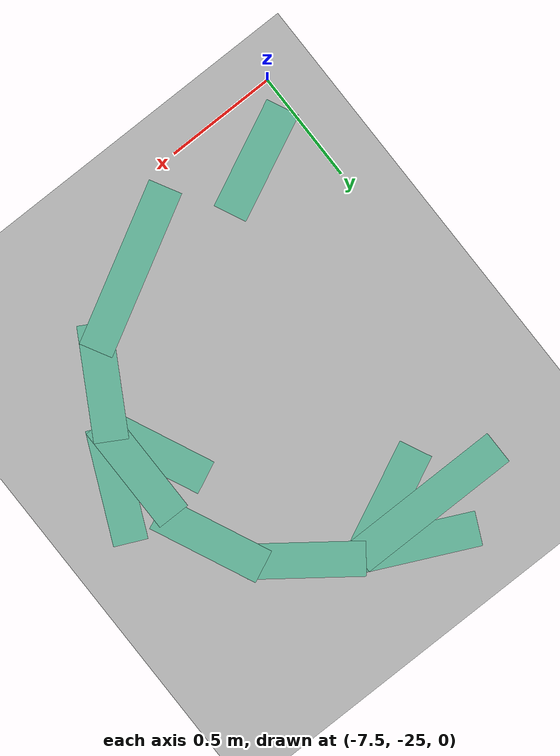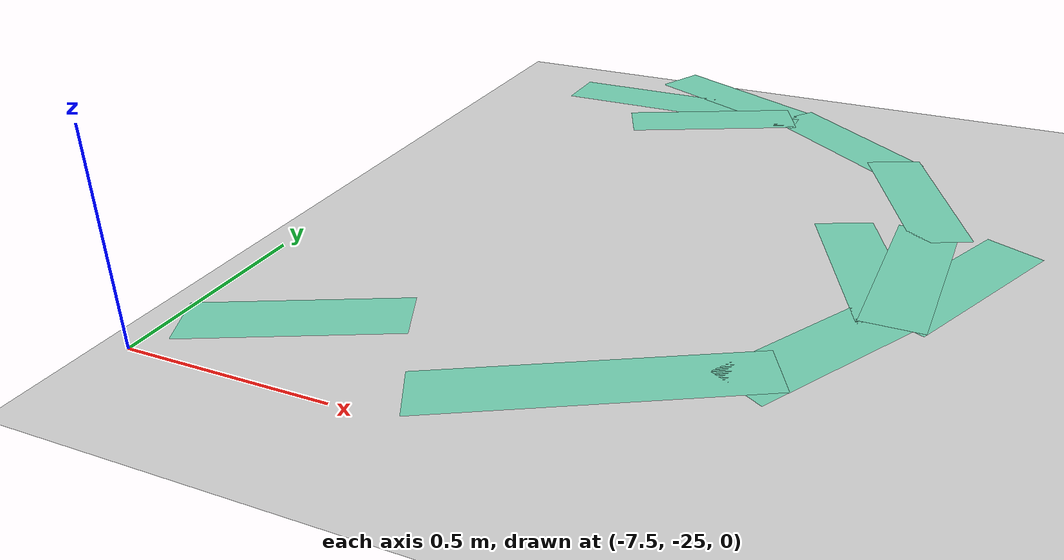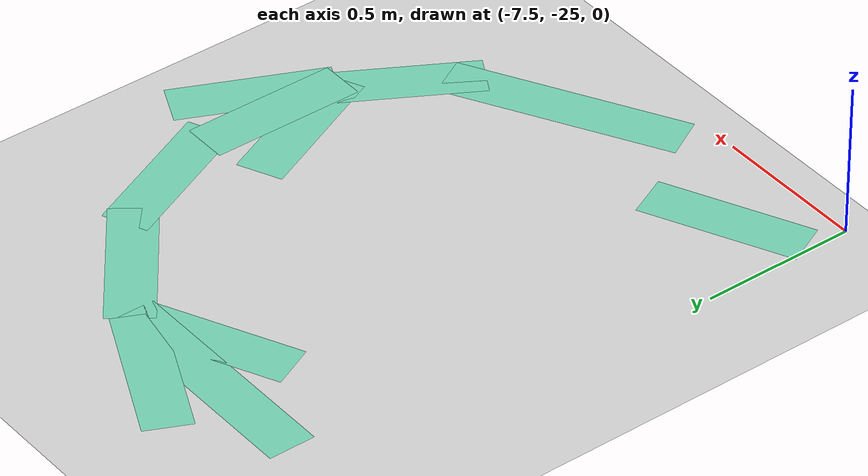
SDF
<sdf version="1.6">
 <world name="world">
  <model name="ground_plane">
   <static>1</static>
   <link name="link">
    <collision name="collision">
     <geometry><plane><normal>0 0 1</normal><size>100 100</size></plane></geometry>
     <surface><friction><ode><mu>100</mu><mu2>50</mu2></ode></friction></surface>
    </collision>
    <visual name="visual">
     <cast_shadows>0</cast_shadows>
     <geometry><plane><normal>0 0 1</normal><size>100 100</size></plane></geometry>
     <material>
      <script><uri>file://media/materials/scripts/gazebo.material</uri><name>Gazebo/Grey</name></script>
     </material>
    </visual>
   </link>
   <pose>0 0 -0.1 0 -0 0</pose>
  </model>
  <model name="path_hospital">
   <link name="Wall_50_clone_clone">
    <pose>-4.9625 2.75179 0 0 -0 0.5</pose>
    <inertial>
     <mass>1</mass>
     <inertia><ixx>1</ixx><ixy>0</ixy><ixz>0</ixz><iyy>1</iyy><iyz>0</iyz><izz>1</izz></inertia>
    </inertial>
    <visual name="Wall_50_Visual">
     <geometry><box><size>0.75 0.15 0</size></box></geometry>
     <material>
      <script><uri>file://media/materials/scripts/gazebo.material</uri><name>Gazebo/Grey</name></script>
      <ambient>0.435294 0.796078 0.67451 1</ambient>
      <shader type="pixel"><normal_map>__default__</normal_map></shader>
      <diffuse>0.7 0.7 0.7 1</diffuse>
      <specular>0.01 0.01 0.01 1</specular>
      <emissive>0 0 0 1</emissive>
     </material>
     <meta><layer>0</layer></meta>
    </visual>
    <collision name="Wall_50_Collision">
     <geometry><box><size>0.75 0.15 0</size></box></geometry>
     <surface>
      <friction>
       <ode><mu>1</mu><mu2>1</mu2><fdir1>0 0 0</fdir1><slip1>0</slip1><slip2>0</slip2></ode>
       <torsional>
        <coefficient>1</coefficient>
        <patch_radius>0</patch_radius>
        <surface_radius>0</surface_radius>
        <use_patch_radius>1</use_patch_radius>
        <ode><slip>0</slip></ode>
       </torsional>
      </friction>
      <bounce><restitution_coefficient>0</restitution_coefficient><threshold>1e+06</threshold></bounce>
      <contact>
       <collide_without_contact>0</collide_without_contact>
       <collide_without_contact_bitmask>1</collide_without_contact_bitmask>
       <collide_bitmask>1</collide_bitmask>
       <ode>
        <soft_cfm>0</soft_cfm>
        <soft_erp>0.2</soft_erp>
        <kp>1e+13</kp>
        <kd>1</kd>
        <max_vel>0.01</max_vel>
        <min_depth>0</min_depth>
       </ode>
       <bullet>
        <split_impulse>1</split_impulse>
        <split_impulse_penetration_threshold>-0.01</split_impulse_penetration_threshold>
        <soft_cfm>0</soft_cfm>
        <soft_erp>0.2</soft_erp>
        <kp>1e+13</kp>
        <kd>1</kd>
       </bullet>
      </contact>
     </surface>
    </collision>
   </link>
   <link name="Wall_51_clone">
    <pose>-4.57423 3.05411 0 0 -0 1.0472</pose>
    <visual name="Wall_51_Visual">
     <geometry><box><size>0.5 0.15 0</size></box></geometry>
     <material>
      <script><uri>file://media/materials/scripts/gazebo.material</uri><name>Gazebo/Grey</name></script>
      <ambient>0.435294 0.796078 0.67451 1</ambient>
      <shader type="pixel"/>
     </material>
     <meta><layer>0</layer></meta>
    </visual>
    <collision name="Wall_51_Collision">
     <geometry><box><size>0.5 0.15 0</size></box></geometry>
     <surface>
      <friction>
       <ode><mu>1</mu><mu2>1</mu2><fdir1>0 0 0</fdir1><slip1>0</slip1><slip2>0</slip2></ode>
       <torsional>
        <coefficient>1</coefficient>
        <patch_radius>0</patch_radius>
        <surface_radius>0</surface_radius>
        <use_patch_radius>1</use_patch_radius>
        <ode><slip>0</slip></ode>
       </torsional>
      </friction>
      <bounce><restitution_coefficient>0</restitution_coefficient><threshold>1e+06</threshold></bounce>
      <contact>
       <collide_without_contact>0</collide_without_contact>
       <collide_without_contact_bitmask>1</collide_without_contact_bitmask>
       <collide_bitmask>1</collide_bitmask>
       <ode>
        <soft_cfm>0</soft_cfm>
        <soft_erp>0.2</soft_erp>
        <kp>1e+13</kp>
        <kd>1</kd>
        <max_vel>0.01</max_vel>
        <min_depth>0</min_depth>
       </ode>
       <bullet>
        <split_impulse>1</split_impulse>
        <split_impulse_penetration_threshold>-0.01</split_impulse_penetration_threshold>
        <soft_cfm>0</soft_cfm>
        <soft_erp>0.2</soft_erp>
        <kp>1e+13</kp>
        <kd>1</kd>
       </bullet>
      </contact>
     </surface>
    </collision>
   </link>
   <link name="Wall_51_clone_0_clone">
    <pose>-4.45948 3.43175 0 0 -0 1.57</pose>
    <inertial>
     <mass>1</mass>
     <inertia><ixx>1</ixx><ixy>0</ixy><ixz>0</ixz><iyy>1</iyy><iyz>0</iyz><izz>1</izz></inertia>
    </inertial>
    <visual name="Wall_51_Visual">
     <geometry><box><size>0.5 0.15 0</size></box></geometry>
     <material>
      <script><uri>file://media/materials/scripts/gazebo.material</uri><name>Gazebo/Grey</name></script>
      <ambient>0.435294 0.796078 0.67451 1</ambient>
      <shader type="pixel"><normal_map>__default__</normal_map></shader>
      <diffuse>0.7 0.7 0.7 1</diffuse>
      <specular>0.01 0.01 0.01 1</specular>
      <emissive>0 0 0 1</emissive>
     </material>
     <meta><layer>0</layer></meta>
    </visual>
    <collision name="Wall_51_Collision">
     <geometry><box><size>0.5 0.15 0</size></box></geometry>
     <surface>
      <friction>
       <ode><mu>1</mu><mu2>1</mu2><fdir1>0 0 0</fdir1><slip1>0</slip1><slip2>0</slip2></ode>
       <torsional>
        <coefficient>1</coefficient>
        <patch_radius>0</patch_radius>
        <surface_radius>0</surface_radius>
        <use_patch_radius>1</use_patch_radius>
        <ode><slip>0</slip></ode>
       </torsional>
      </friction>
      <bounce><restitution_coefficient>0</restitution_coefficient><threshold>1e+06</threshold></bounce>
      <contact>
       <collide_without_contact>0</collide_without_contact>
       <collide_without_contact_bitmask>1</collide_without_contact_bitmask>
       <collide_bitmask>1</collide_bitmask>
       <ode>
        <soft_cfm>0</soft_cfm>
        <soft_erp>0.2</soft_erp>
        <kp>1e+13</kp>
        <kd>1</kd>
        <max_vel>0.01</max_vel>
        <min_depth>0</min_depth>
       </ode>
       <bullet>
        <split_impulse>1</split_impulse>
        <split_impulse_penetration_threshold>-0.01</split_impulse_penetration_threshold>
        <soft_cfm>0</soft_cfm>
        <soft_erp>0.2</soft_erp>
        <kp>1e+13</kp>
        <kd>1</kd>
       </bullet>
      </contact>
     </surface>
    </collision>
   </link>
   <link name="Wall_51_clone_0_clone_clone_clone_clone">
    <pose>-4.51982 3.8546 0 0 -0 2</pose>
    <inertial>
     <mass>1</mass>
     <inertia><ixx>1</ixx><ixy>0</ixy><ixz>0</ixz><iyy>1</iyy><iyz>0</iyz><izz>1</izz></inertia>
    </inertial>
    <visual name="Wall_51_Visual">
     <geometry><box><size>0.5 0.15 0</size></box></geometry>
     <material>
      <script><uri>file://media/materials/scripts/gazebo.material</uri><name>Gazebo/Grey</name></script>
      <ambient>0.435294 0.796078 0.67451 1</ambient>
      <shader type="pixel"><normal_map>__default__</normal_map></shader>
      <diffuse>0.7 0.7 0.7 1</diffuse>
      <specular>0.01 0.01 0.01 1</specular>
      <emissive>0 0 0 1</emissive>
     </material>
     <meta><layer>0</layer></meta>
    </visual>
    <collision name="Wall_51_Collision">
     <geometry><box><size>0.5 0.15 0</size></box></geometry>
     <surface>
      <friction>
       <ode><mu>1</mu><mu2>1</mu2><fdir1>0 0 0</fdir1><slip1>0</slip1><slip2>0</slip2></ode>
       <torsional>
        <coefficient>1</coefficient>
        <patch_radius>0</patch_radius>
        <surface_radius>0</surface_radius>
        <use_patch_radius>1</use_patch_radius>
        <ode><slip>0</slip></ode>
       </torsional>
      </friction>
      <bounce><restitution_coefficient>0</restitution_coefficient><threshold>1e+06</threshold></bounce>
      <contact>
       <collide_without_contact>0</collide_without_contact>
       <collide_without_contact_bitmask>1</collide_without_contact_bitmask>
       <collide_bitmask>1</collide_bitmask>
       <ode>
        <soft_cfm>0</soft_cfm>
        <soft_erp>0.2</soft_erp>
        <kp>1e+13</kp>
        <kd>1</kd>
        <max_vel>0.01</max_vel>
        <min_depth>0</min_depth>
       </ode>
       <bullet>
        <split_impulse>1</split_impulse>
        <split_impulse_penetration_threshold>-0.01</split_impulse_penetration_threshold>
        <soft_cfm>0</soft_cfm>
        <soft_erp>0.2</soft_erp>
        <kp>1e+13</kp>
        <kd>1</kd>
       </bullet>
      </contact>
     </surface>
    </collision>
   </link>
   <link name="Wall_51_clone_0_clone_clone_clone_clone_0">
    <pose>-4.78333 4.17135 0 0 -0 2.5</pose>
    <inertial>
     <mass>1</mass>
     <inertia><ixx>1</ixx><ixy>0</ixy><ixz>0</ixz><iyy>1</iyy><iyz>0</iyz><izz>1</izz></inertia>
    </inertial>
    <visual name="Wall_51_Visual">
     <geometry><box><size>0.5 0.15 0</size></box></geometry>
     <material>
      <script><uri>file://media/materials/scripts/gazebo.material</uri><name>Gazebo/Grey</name></script>
      <ambient>0.435294 0.796078 0.67451 1</ambient>
      <shader type="pixel"><normal_map>__default__</normal_map></shader>
      <diffuse>0.7 0.7 0.7 1</diffuse>
      <specular>0.01 0.01 0.01 1</specular>
      <emissive>0 0 0 1</emissive>
     </material>
     <meta><layer>0</layer></meta>
    </visual>
    <collision name="Wall_51_Collision">
     <geometry><box><size>0.5 0.15 0</size></box></geometry>
     <surface>
      <friction>
       <ode><mu>1</mu><mu2>1</mu2><fdir1>0 0 0</fdir1><slip1>0</slip1><slip2>0</slip2></ode>
       <torsional>
        <coefficient>1</coefficient>
        <patch_radius>0</patch_radius>
        <surface_radius>0</surface_radius>
        <use_patch_radius>1</use_patch_radius>
        <ode><slip>0</slip></ode>
       </torsional>
      </friction>
      <bounce><restitution_coefficient>0</restitution_coefficient><threshold>1e+06</threshold></bounce>
      <contact>
       <collide_without_contact>0</collide_without_contact>
       <collide_without_contact_bitmask>1</collide_without_contact_bitmask>
       <collide_bitmask>1</collide_bitmask>
       <ode>
        <soft_cfm>0</soft_cfm>
        <soft_erp>0.2</soft_erp>
        <kp>1e+13</kp>
        <kd>1</kd>
        <max_vel>0.01</max_vel>
        <min_depth>0</min_depth>
       </ode>
       <bullet>
        <split_impulse>1</split_impulse>
        <split_impulse_penetration_threshold>-0.01</split_impulse_penetration_threshold>
        <soft_cfm>0</soft_cfm>
        <soft_erp>0.2</soft_erp>
        <kp>1e+13</kp>
        <kd>1</kd>
       </bullet>
      </contact>
     </surface>
    </collision>
   </link>
   <link name="Wall_59_clone_clone">
    <pose>-5.33406 4.29834 0 0 -0 3.14159</pose>
    <visual name="Wall_59_Visual">
     <geometry><box><size>0.75 0.15 0</size></box></geometry>
     <material>
      <script><uri>file://media/materials/scripts/gazebo.material</uri><name>Gazebo/Grey</name></script>
      <ambient>0.435294 0.796078 0.67451 1</ambient>
      <shader type="pixel"/>
     </material>
     <meta><layer>0</layer></meta>
    </visual>
    <collision name="Wall_59_Collision">
     <geometry><box><size>0.75 0.15 0</size></box></geometry>
     <surface>
      <friction>
       <ode><mu>1</mu><mu2>1</mu2><fdir1>0 0 0</fdir1><slip1>0</slip1><slip2>0</slip2></ode>
       <torsional>
        <coefficient>1</coefficient>
        <patch_radius>0</patch_radius>
        <surface_radius>0</surface_radius>
        <use_patch_radius>1</use_patch_radius>
        <ode><slip>0</slip></ode>
       </torsional>
      </friction>
      <bounce><restitution_coefficient>0</restitution_coefficient><threshold>1e+06</threshold></bounce>
      <contact>
       <collide_without_contact>0</collide_without_contact>
       <collide_without_contact_bitmask>1</collide_without_contact_bitmask>
       <collide_bitmask>1</collide_bitmask>
       <ode>
        <soft_cfm>0</soft_cfm>
        <soft_erp>0.2</soft_erp>
        <kp>1e+13</kp>
        <kd>1</kd>
        <max_vel>0.01</max_vel>
        <min_depth>0</min_depth>
       </ode>
       <bullet>
        <split_impulse>1</split_impulse>
        <split_impulse_penetration_threshold>-0.01</split_impulse_penetration_threshold>
        <soft_cfm>0</soft_cfm>
        <soft_erp>0.2</soft_erp>
        <kp>1e+13</kp>
        <kd>1</kd>
       </bullet>
      </contact>
     </surface>
    </collision>
   </link>
   <link name="Wall_60_clone_clone_clone">
    <pose>-5.20763 4.40746 0 0 -0 2.7</pose>
    <inertial>
     <mass>1</mass>
     <inertia><ixx>1</ixx><ixy>0</ixy><ixz>0</ixz><iyy>1</iyy><iyz>0</iyz><izz>1</izz></inertia>
    </inertial>
    <visual name="Wall_60_Visual">
     <geometry><box><size>0.5 0.15 0</size></box></geometry>
     <material>
      <script><uri>file://media/materials/scripts/gazebo.material</uri><name>Gazebo/Grey</name></script>
      <ambient>0.435 0.796 0.675 1</ambient>
      <shader type="pixel"><normal_map>__default__</normal_map></shader>
      <diffuse>0.7 0.7 0.7 1</diffuse>
      <specular>0.01 0.01 0.01 1</specular>
      <emissive>0 0 0 1</emissive>
     </material>
     <meta><layer>0</layer></meta>
    </visual>
    <collision name="Wall_60_Collision">
     <geometry><box><size>0.5 0.15 0</size></box></geometry>
     <surface>
      <friction>
       <ode><mu>1</mu><mu2>1</mu2><fdir1>0 0 0</fdir1><slip1>0</slip1><slip2>0</slip2></ode>
       <torsional>
        <coefficient>1</coefficient>
        <patch_radius>0</patch_radius>
        <surface_radius>0</surface_radius>
        <use_patch_radius>1</use_patch_radius>
        <ode><slip>0</slip></ode>
       </torsional>
      </friction>
      <bounce><restitution_coefficient>0</restitution_coefficient><threshold>1e+06</threshold></bounce>
      <contact>
       <collide_without_contact>0</collide_without_contact>
       <collide_without_contact_bitmask>1</collide_without_contact_bitmask>
       <collide_bitmask>1</collide_bitmask>
       <ode>
        <soft_cfm>0</soft_cfm>
        <soft_erp>0.2</soft_erp>
        <kp>1e+13</kp>
        <kd>1</kd>
        <max_vel>0.01</max_vel>
        <min_depth>0</min_depth>
       </ode>
       <bullet>
        <split_impulse>1</split_impulse>
        <split_impulse_penetration_threshold>-0.01</split_impulse_penetration_threshold>
        <soft_cfm>0</soft_cfm>
        <soft_erp>0.2</soft_erp>
        <kp>1e+13</kp>
        <kd>1</kd>
       </bullet>
      </contact>
     </surface>
    </collision>
   </link>
   <link name="Wall_60_clone_clone_clone_0">
    <pose>-5.20796 4.19535 0 0 0 -2.7</pose>
    <inertial>
     <mass>1</mass>
     <inertia><ixx>1</ixx><ixy>0</ixy><ixz>0</ixz><iyy>1</iyy><iyz>0</iyz><izz>1</izz></inertia>
    </inertial>
    <visual name="Wall_60_Visual">
     <geometry><box><size>0.5 0.15 0</size></box></geometry>
     <material>
      <script><uri>file://media/materials/scripts/gazebo.material</uri><name>Gazebo/Grey</name></script>
      <ambient>0.435 0.796 0.675 1</ambient>
      <shader type="pixel"><normal_map>__default__</normal_map></shader>
      <diffuse>0.7 0.7 0.7 1</diffuse>
      <specular>0.01 0.01 0.01 1</specular>
      <emissive>0 0 0 1</emissive>
     </material>
     <meta><layer>0</layer></meta>
    </visual>
    <collision name="Wall_60_Collision">
     <geometry><box><size>0.5 0.15 0</size></box></geometry>
     <surface>
      <friction>
       <ode><mu>1</mu><mu2>1</mu2><fdir1>0 0 0</fdir1><slip1>0</slip1><slip2>0</slip2></ode>
       <torsional>
        <coefficient>1</coefficient>
        <patch_radius>0</patch_radius>
        <surface_radius>0</surface_radius>
        <use_patch_radius>1</use_patch_radius>
        <ode><slip>0</slip></ode>
       </torsional>
      </friction>
      <bounce><restitution_coefficient>0</restitution_coefficient><threshold>1e+06</threshold></bounce>
      <contact>
       <collide_without_contact>0</collide_without_contact>
       <collide_without_contact_bitmask>1</collide_without_contact_bitmask>
       <collide_bitmask>1</collide_bitmask>
       <ode>
        <soft_cfm>0</soft_cfm>
        <soft_erp>0.2</soft_erp>
        <kp>1e+13</kp>
        <kd>1</kd>
        <max_vel>0.01</max_vel>
        <min_depth>0</min_depth>
       </ode>
       <bullet>
        <split_impulse>1</split_impulse>
        <split_impulse_penetration_threshold>-0.01</split_impulse_penetration_threshold>
        <soft_cfm>0</soft_cfm>
        <soft_erp>0.2</soft_erp>
        <kp>1e+13</kp>
        <kd>1</kd>
       </bullet>
      </contact>
     </surface>
    </collision>
   </link>
   <link name="Wall_60_clone_clone_clone_0_clone">
    <pose>-5.65923 2.7224 0 0 0 -2.7</pose>
    <inertial>
     <mass>1</mass>
     <inertia><ixx>1</ixx><ixy>0</ixy><ixz>0</ixz><iyy>1</iyy><iyz>0</iyz><izz>1</izz></inertia>
    </inertial>
    <visual name="Wall_60_Visual">
     <geometry><box><size>0.5 0.15 0</size></box></geometry>
     <material>
      <script><uri>file://media/materials/scripts/gazebo.material</uri><name>Gazebo/Grey</name></script>
      <ambient>0.435 0.796 0.675 1</ambient>
      <shader type="pixel"><normal_map>__default__</normal_map></shader>
      <diffuse>0.7 0.7 0.7 1</diffuse>
      <specular>0.01 0.01 0.01 1</specular>
      <emissive>0 0 0 1</emissive>
     </material>
     <meta><layer>0</layer></meta>
    </visual>
    <collision name="Wall_60_Collision">
     <geometry><box><size>0.5 0.15 0</size></box></geometry>
     <surface>
      <friction>
       <ode><mu>1</mu><mu2>1</mu2><fdir1>0 0 0</fdir1><slip1>0</slip1><slip2>0</slip2></ode>
       <torsional>
        <coefficient>1</coefficient>
        <patch_radius>0</patch_radius>
        <surface_radius>0</surface_radius>
        <use_patch_radius>1</use_patch_radius>
        <ode><slip>0</slip></ode>
       </torsional>
      </friction>
      <bounce><restitution_coefficient>0</restitution_coefficient><threshold>1e+06</threshold></bounce>
      <contact>
       <collide_without_contact>0</collide_without_contact>
       <collide_without_contact_bitmask>1</collide_without_contact_bitmask>
       <collide_bitmask>1</collide_bitmask>
       <ode>
        <soft_cfm>0</soft_cfm>
        <soft_erp>0.2</soft_erp>
        <kp>1e+13</kp>
        <kd>1</kd>
        <max_vel>0.01</max_vel>
        <min_depth>0</min_depth>
       </ode>
       <bullet>
        <split_impulse>1</split_impulse>
        <split_impulse_penetration_threshold>-0.01</split_impulse_penetration_threshold>
        <soft_cfm>0</soft_cfm>
        <soft_erp>0.2</soft_erp>
        <kp>1e+13</kp>
        <kd>1</kd>
       </bullet>
      </contact>
     </surface>
    </collision>
   </link>
   <link name="Wall_60_clone_clone_clone_1">
    <pose>-4.56216 3.41085 0 0 -0 2</pose>
    <inertial>
     <mass>1</mass>
     <inertia><ixx>1</ixx><ixy>0</ixy><ixz>0</ixz><iyy>1</iyy><iyz>0</iyz><izz>1</izz></inertia>
    </inertial>
    <visual name="Wall_60_Visual">
     <geometry><box><size>0.5 0.15 0</size></box></geometry>
     <material>
      <script><uri>file://media/materials/scripts/gazebo.material</uri><name>Gazebo/Grey</name></script>
      <ambient>0.435 0.796 0.675 1</ambient>
      <shader type="pixel"><normal_map>__default__</normal_map></shader>
      <diffuse>0.7 0.7 0.7 1</diffuse>
      <specular>0.01 0.01 0.01 1</specular>
      <emissive>0 0 0 1</emissive>
     </material>
     <meta><layer>0</layer></meta>
    </visual>
    <collision name="Wall_60_Collision">
     <geometry><box><size>0.5 0.15 0</size></box></geometry>
     <surface>
      <friction>
       <ode><mu>1</mu><mu2>1</mu2><fdir1>0 0 0</fdir1><slip1>0</slip1><slip2>0</slip2></ode>
       <torsional>
        <coefficient>1</coefficient>
        <patch_radius>0</patch_radius>
        <surface_radius>0</surface_radius>
        <use_patch_radius>1</use_patch_radius>
        <ode><slip>0</slip></ode>
       </torsional>
      </friction>
      <bounce><restitution_coefficient>0</restitution_coefficient><threshold>1e+06</threshold></bounce>
      <contact>
       <collide_without_contact>0</collide_without_contact>
       <collide_without_contact_bitmask>1</collide_without_contact_bitmask>
       <collide_bitmask>1</collide_bitmask>
       <ode>
        <soft_cfm>0</soft_cfm>
        <soft_erp>0.2</soft_erp>
        <kp>1e+13</kp>
        <kd>1</kd>
        <max_vel>0.01</max_vel>
        <min_depth>0</min_depth>
       </ode>
       <bullet>
        <split_impulse>1</split_impulse>
        <split_impulse_penetration_threshold>-0.01</split_impulse_penetration_threshold>
        <soft_cfm>0</soft_cfm>
        <soft_erp>0.2</soft_erp>
        <kp>1e+13</kp>
        <kd>1</kd>
       </bullet>
      </contact>
     </surface>
    </collision>
   </link>
   <link name="Wall_60_clone_clone_clone_2">
    <pose>-4.35297 3.42898 0 0 0 -2</pose>
    <inertial>
     <mass>1</mass>
     <inertia><ixx>1</ixx><ixy>0</ixy><ixz>0</ixz><iyy>1</iyy><iyz>0</iyz><izz>1</izz></inertia>
    </inertial>
    <visual name="Wall_60_Visual">
     <geometry><box><size>0.5 0.15 0</size></box></geometry>
     <material>
      <script><uri>file://media/materials/scripts/gazebo.material</uri><name>Gazebo/Grey</name></script>
      <ambient>0.435 0.796 0.675 1</ambient>
      <shader type="pixel"><normal_map>__default__</normal_map></shader>
      <diffuse>0.7 0.7 0.7 1</diffuse>
      <specular>0.01 0.01 0.01 1</specular>
      <emissive>0 0 0 1</emissive>
     </material>
     <meta><layer>0</layer></meta>
    </visual>
    <collision name="Wall_60_Collision">
     <geometry><box><size>0.5 0.15 0</size></box></geometry>
     <surface>
      <friction>
       <ode><mu>1</mu><mu2>1</mu2><fdir1>0 0 0</fdir1><slip1>0</slip1><slip2>0</slip2></ode>
       <torsional>
        <coefficient>1</coefficient>
        <patch_radius>0</patch_radius>
        <surface_radius>0</surface_radius>
        <use_patch_radius>1</use_patch_radius>
        <ode><slip>0</slip></ode>
       </torsional>
      </friction>
      <bounce><restitution_coefficient>0</restitution_coefficient><threshold>1e+06</threshold></bounce>
      <contact>
       <collide_without_contact>0</collide_without_contact>
       <collide_without_contact_bitmask>1</collide_without_contact_bitmask>
       <collide_bitmask>1</collide_bitmask>
       <ode>
        <soft_cfm>0</soft_cfm>
        <soft_erp>0.2</soft_erp>
        <kp>1e+13</kp>
        <kd>1</kd>
        <max_vel>0.01</max_vel>
        <min_depth>0</min_depth>
       </ode>
       <bullet>
        <split_impulse>1</split_impulse>
        <split_impulse_penetration_threshold>-0.01</split_impulse_penetration_threshold>
        <soft_cfm>0</soft_cfm>
        <soft_erp>0.2</soft_erp>
        <kp>1e+13</kp>
        <kd>1</kd>
       </bullet>
      </contact>
     </surface>
    </collision>
   </link>
   <static>1</static>
   <pose>-1.59521 -27.4877 0.001 0 -0 0</pose>
  </model>
 </world>
</sdf>
